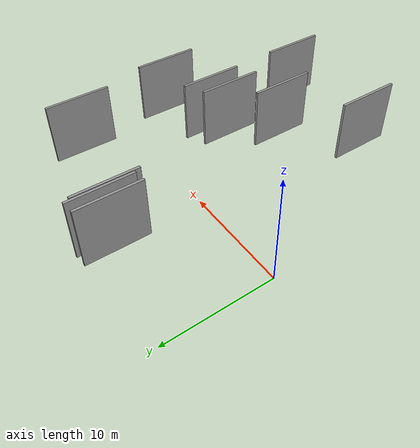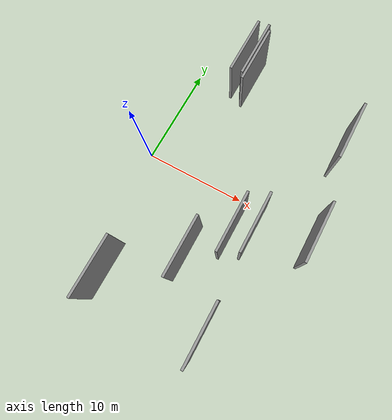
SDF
<sdf version="1.6">
 <world name="default">
  <scene>
   <sky><clouds><speed>12</speed></clouds></sky>
   <ambient>0.4 0.4 0.4 1</ambient>
   <background>0.7 0.7 0.7 1</background>
   <shadows>1</shadows>
  </scene>
  <gravity>0 0 -9.8066</gravity>
  <magnetic_field>6e-06 2.3e-05 -4.2e-05</magnetic_field>
  <physics default="0" name="default_physics" type="ode">
   <ode>
    <solver>
     <type>quick</type>
     <iters>10</iters>
     <sor>1.0</sor>
     <use_dynamic_moi_rescaling>0</use_dynamic_moi_rescaling>
    </solver>
    <constraints>
     <cfm>0</cfm>
     <erp>0.2</erp>
     <contact_max_correcting_vel>100</contact_max_correcting_vel>
     <contact_surface_layer>0.001</contact_surface_layer>
    </constraints>
   </ode>
   <max_step_size>0.004</max_step_size>
   <real_time_factor>1</real_time_factor>
   <real_time_update_rate>250</real_time_update_rate>
  </physics>
  <light name="sun" type="directional">
   <pose>0 0 10 0 0 0</pose>
   <diffuse>0.8 0.8 0.8 1</diffuse>
   <specular>0.2 0.2 0.2 1</specular>
   <attenuation>
    <range>1000</range>
    <constant>0.9</constant>
    <linear>0.01</linear>
    <quadratic>0.001</quadratic>
   </attenuation>
   <direction>-0.5 0.1 -0.9</direction>
  </light>
  <model name="grey_wall_1">
   <static>1</static>
   <pose>16.9265 -1.5568 5.0 0.000000 0.000000 1.570796</pose>
   <link name="link">
    <pose>0 0 2.50 0 0 0</pose>
    <collision name="collision"><geometry><box><size>5.00 0.2 5.00</size></box></geometry></collision>
    <visual name="visual">
     <cast_shadows>0</cast_shadows>
     <geometry><box><size>5.00 0.2 5.00</size></box></geometry>
     <material>
      <script>
       <uri>model://grey_wall/materials/scripts</uri>
       <uri>model://grey_wall/materials/textures</uri>
       <name>vrc/grey_wall</name>
      </script>
     </material>
    </visual>
   </link>
  </model>
  <model name="grey_wall_2">
   <static>1</static>
   <pose>12.7440 -11.6046 5.0 0.000000 0.000000 1.570796</pose>
   <link name="link">
    <pose>0 0 2.50 0 0 0</pose>
    <collision name="collision"><geometry><box><size>5.00 0.2 5.00</size></box></geometry></collision>
    <visual name="visual">
     <cast_shadows>0</cast_shadows>
     <geometry><box><size>5.00 0.2 5.00</size></box></geometry>
     <material>
      <script>
       <uri>model://grey_wall/materials/scripts</uri>
       <uri>model://grey_wall/materials/textures</uri>
       <name>vrc/grey_wall</name>
      </script>
     </material>
    </visual>
   </link>
  </model>
  <model name="grey_wall_3">
   <static>1</static>
   <pose>5.1356 9.5889 5.0 0.000000 0.000000 1.570796</pose>
   <link name="link">
    <pose>0 0 2.50 0 0 0</pose>
    <collision name="collision"><geometry><box><size>5.00 0.2 5.00</size></box></geometry></collision>
    <visual name="visual">
     <cast_shadows>0</cast_shadows>
     <geometry><box><size>5.00 0.2 5.00</size></box></geometry>
     <material>
      <script>
       <uri>model://grey_wall/materials/scripts</uri>
       <uri>model://grey_wall/materials/textures</uri>
       <name>vrc/grey_wall</name>
      </script>
     </material>
    </visual>
   </link>
  </model>
  <model name="grey_wall_4">
   <static>1</static>
   <pose>3.6493 -11.2962 5.0 0.000000 0.000000 1.570796</pose>
   <link name="link">
    <pose>0 0 2.50 0 0 0</pose>
    <collision name="collision"><geometry><box><size>5.00 0.2 5.00</size></box></geometry></collision>
    <visual name="visual">
     <cast_shadows>0</cast_shadows>
     <geometry><box><size>5.00 0.2 5.00</size></box></geometry>
     <material>
      <script>
       <uri>model://grey_wall/materials/scripts</uri>
       <uri>model://grey_wall/materials/textures</uri>
       <name>vrc/grey_wall</name>
      </script>
     </material>
    </visual>
   </link>
  </model>
  <model name="grey_wall_5">
   <static>1</static>
   <pose>11.0422 -3.8303 5.0 0.000000 0.000000 1.570796</pose>
   <link name="link">
    <pose>0 0 2.50 0 0 0</pose>
    <collision name="collision"><geometry><box><size>5.00 0.2 5.00</size></box></geometry></collision>
    <visual name="visual">
     <cast_shadows>0</cast_shadows>
     <geometry><box><size>5.00 0.2 5.00</size></box></geometry>
     <material>
      <script>
       <uri>model://grey_wall/materials/scripts</uri>
       <uri>model://grey_wall/materials/textures</uri>
       <name>vrc/grey_wall</name>
      </script>
     </material>
    </visual>
   </link>
  </model>
  <model name="grey_wall_6">
   <static>1</static>
   <pose>6.0702 9.6958 5.0 0.000000 0.000000 1.570796</pose>
   <link name="link">
    <pose>0 0 2.50 0 0 0</pose>
    <collision name="collision"><geometry><box><size>5.00 0.2 5.00</size></box></geometry></collision>
    <visual name="visual">
     <cast_shadows>0</cast_shadows>
     <geometry><box><size>5.00 0.2 5.00</size></box></geometry>
     <material>
      <script>
       <uri>model://grey_wall/materials/scripts</uri>
       <uri>model://grey_wall/materials/textures</uri>
       <name>vrc/grey_wall</name>
      </script>
     </material>
    </visual>
   </link>
  </model>
  <model name="grey_wall_7">
   <static>1</static>
   <pose>12.5632 -3.0804 5.0 0.000000 0.000000 1.570796</pose>
   <link name="link">
    <pose>0 0 2.50 0 0 0</pose>
    <collision name="collision"><geometry><box><size>5.00 0.2 5.00</size></box></geometry></collision>
    <visual name="visual">
     <cast_shadows>0</cast_shadows>
     <geometry><box><size>5.00 0.2 5.00</size></box></geometry>
     <material>
      <script>
       <uri>model://grey_wall/materials/scripts</uri>
       <uri>model://grey_wall/materials/textures</uri>
       <name>vrc/grey_wall</name>
      </script>
     </material>
    </visual>
   </link>
  </model>
  <model name="grey_wall_8">
   <static>1</static>
   <pose>8.6156 -7.0807 5.0 0.000000 0.000000 1.570796</pose>
   <link name="link">
    <pose>0 0 2.50 0 0 0</pose>
    <collision name="collision"><geometry><box><size>5.00 0.2 5.00</size></box></geometry></collision>
    <visual name="visual">
     <cast_shadows>0</cast_shadows>
     <geometry><box><size>5.00 0.2 5.00</size></box></geometry>
     <material>
      <script>
       <uri>model://grey_wall/materials/scripts</uri>
       <uri>model://grey_wall/materials/textures</uri>
       <name>vrc/grey_wall</name>
      </script>
     </material>
    </visual>
   </link>
  </model>
  <model name="grey_wall_9">
   <static>1</static>
   <pose>6.3278 9.2247 5.0 0.000000 0.000000 1.570796</pose>
   <link name="link">
    <pose>0 0 2.50 0 0 0</pose>
    <collision name="collision"><geometry><box><size>5.00 0.2 5.00</size></box></geometry></collision>
    <visual name="visual">
     <cast_shadows>0</cast_shadows>
     <geometry><box><size>5.00 0.2 5.00</size></box></geometry>
     <material>
      <script>
       <uri>model://grey_wall/materials/scripts</uri>
       <uri>model://grey_wall/materials/textures</uri>
       <name>vrc/grey_wall</name>
      </script>
     </material>
    </visual>
   </link>
  </model>
  <model name="grey_wall_10">
   <static>1</static>
   <pose>15.8974 6.7596 5.0 0.000000 0.000000 1.570796</pose>
   <link name="link">
    <pose>0 0 2.50 0 0 0</pose>
    <collision name="collision"><geometry><box><size>5.00 0.2 5.00</size></box></geometry></collision>
    <visual name="visual">
     <cast_shadows>0</cast_shadows>
     <geometry><box><size>5.00 0.2 5.00</size></box></geometry>
     <material>
      <script>
       <uri>model://grey_wall/materials/scripts</uri>
       <uri>model://grey_wall/materials/textures</uri>
       <name>vrc/grey_wall</name>
      </script>
     </material>
    </visual>
   </link>
  </model>
 </world>
</sdf>
